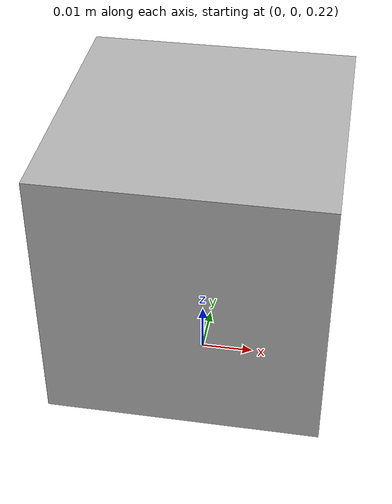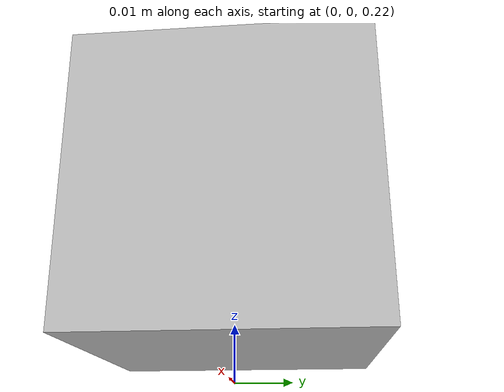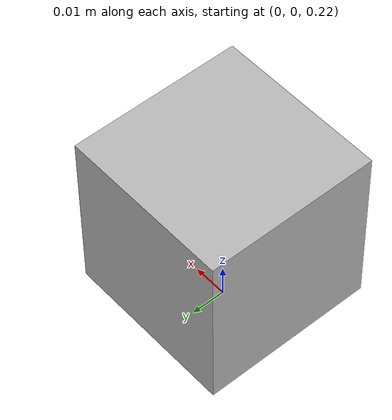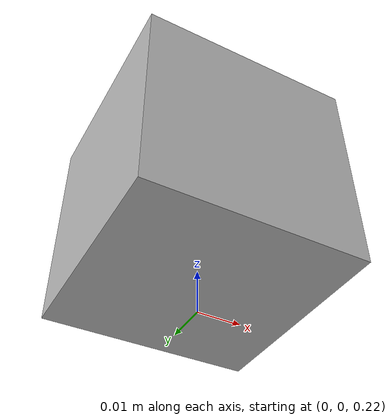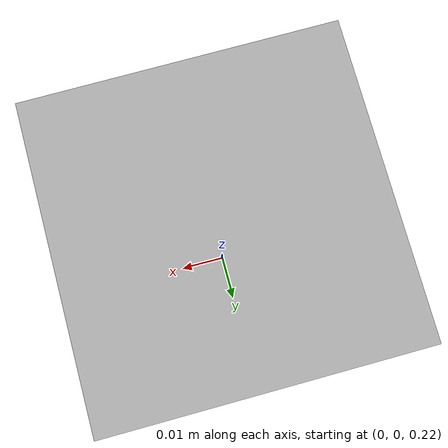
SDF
<?xml version="1.0" ?>
<sdf version="1.6">

 <!-- Модель виртуальной камеры с RGB‑сенсором mono_camera -->
    <model name="mono_camera_model">
      <pose>0 0 0.25 0 0 0</pose>
      <static>true</static>
      <link name="camera_link">
        <collision name="collision">
          <geometry>
            <box><size>0.05 0.05 0.05</size></box>
          </geometry>
        </collision>
        <visual name="visual">
          <geometry>
            <box><size>0.05 0.05 0.05</size></box>
          </geometry>
        </visual>
        <sensor name="mono_camera" type="camera">
          <camera name="mono_camera">
            <horizontal_fov>1.3</horizontal_fov>
            <image>
              <width>3840</width>
              <height>2400</height>
              <format>R8G8B8</format>
            </image>
            <clip>
              <near>0.05</near>
              <far>1000.0</far>
            </clip>
            <noise>
              <type>gaussian</type>
              <mean>0.0</mean>
              <stddev>0.005</stddev>
            </noise>
          </camera>
          <plugin name="mono_camera_plugin" filename="libgazebo_ros_camera.so">
            <cameraName>mono_camera</cameraName>
            <ros>
              <namespace>/mono_camera</namespace>
              <argument>image_raw:=image_raw</argument>
            </ros>
            <frame_name>camera_optical_frame</frame_name>
            <optical_frame_id>camera_optical_frame</optical_frame_id>
            <update_rate>1</update_rate>
          </plugin>
        </sensor>
      </link>
    </model>

     <!-- Модель виртуальной камеры глубины-->
    <model name="depth_camera">
      <pose>0 0 0.25 0 0 0</pose>
      <static>true</static>
      <link name="camera_link">
        <collision name="collision">
          <geometry><box><size>0.05 0.05 0.05</size></box></geometry>
        </collision>
        <visual name="visual">
          <geometry><box><size>0.05 0.05 0.05</size></box></geometry>
        </visual>
        <sensor name="depth_cam_sensor" type="depth">
          <camera name="depth_camera">
            <horizontal_fov>1.3</horizontal_fov>
            <image>
              <width>3840</width>
              <height>2400</height>
              <format>R8G8B8</format>
            </image>
            <clip>
              <near>0.05</near>
              <far>1000.0</far>
            </clip>
            <noise>
              <type>gaussian</type>
              <mean>0.0</mean>
              <stddev>0.005</stddev>
            </noise>
          </camera>
          <plugin name="depth_camera_plugin" filename="libgazebo_ros_depth_camera.so">
            <cameraName>sensor</cameraName>
            <ros>
              <namespace>/sensor</namespace>
              <argument>image_raw:=image_raw</argument>
              <argument>depth/image_raw:=depth/image_raw</argument>
              <argument>points:=points</argument>
            </ros>
            <frame_name>camera_depth_optical_frame</frame_name>
            <optical_frame_id>camera_depth_optical_frame</optical_frame_id>
            <update_rate>1</update_rate>
          </plugin>
        </sensor>
      </link>
    </model>

</sdf>
